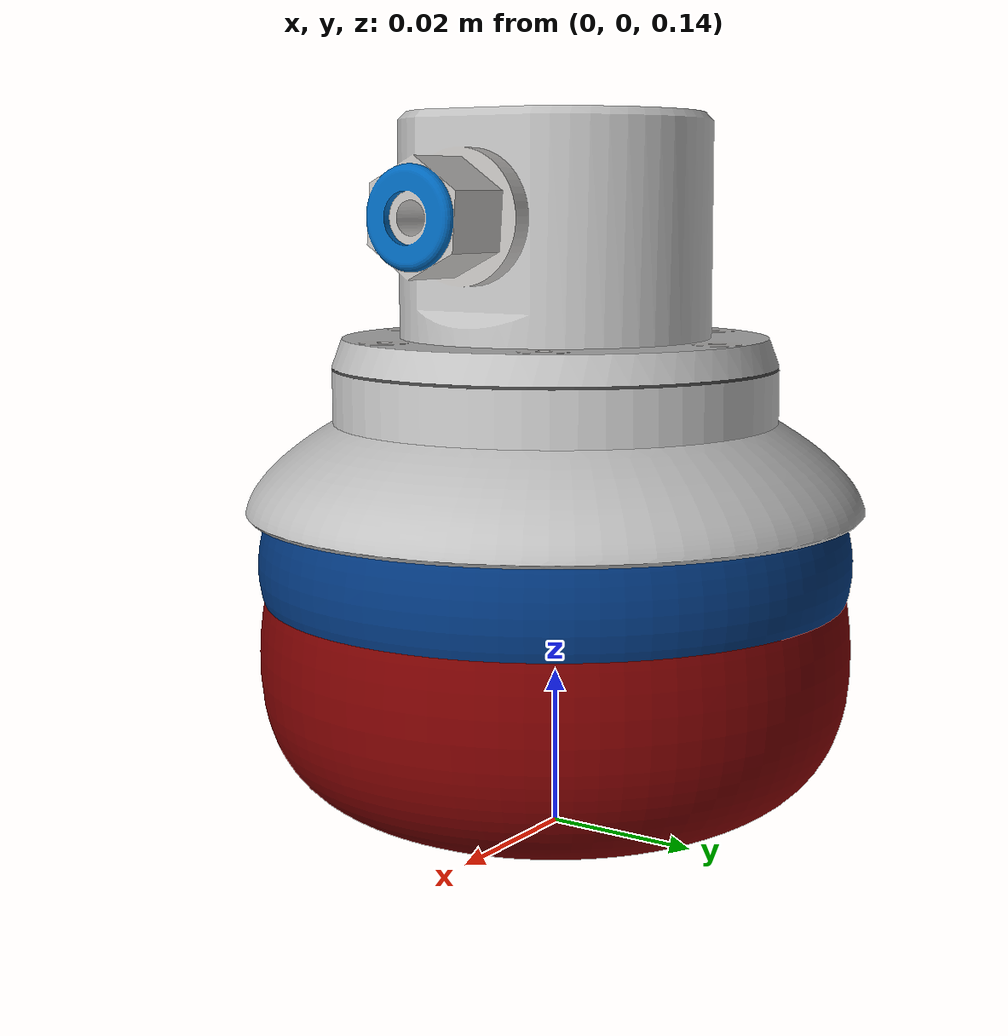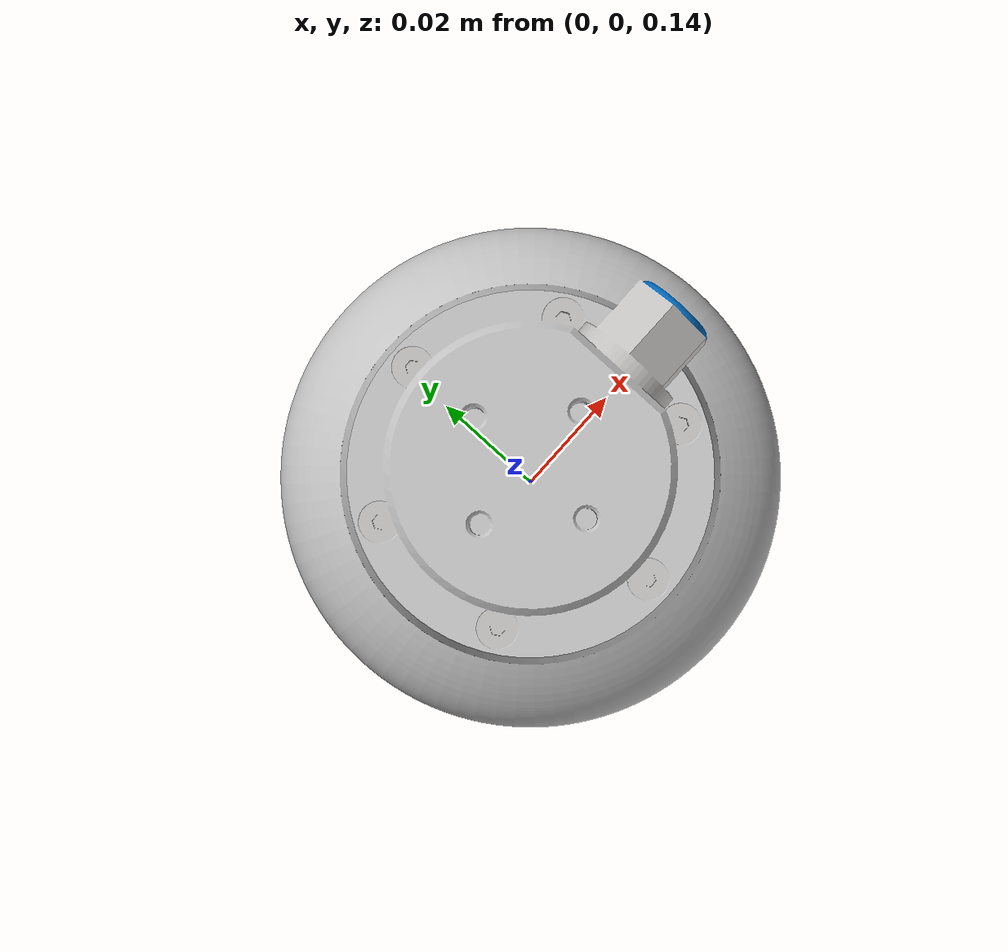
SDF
<?xml version="1.0" ?>
<sdf version="1.5">
  <model name="universal_gripper">
    <pose>0 0 0.2 0 0 0</pose>
    <static>false</static>
    <plugin filename="libgazebo_universal_gripper_plugin.so" name="universal_gripper_plugin"/>
    <link name="base_link">
      <pose>0 0 0 0 0 0</pose>
      <inertial>
        <inertia>
          <ixx>0.0002</ixx>
          <ixy>0</ixy>
          <ixz>0</ixz>
          <iyy>0.0002</iyy>
          <iyz>0</iyz>
          <izz>0.0002</izz>
        </inertia>
        <mass>0.1</mass>
      </inertial>
      <visual name="visual_open">
        <geometry>
          <mesh>
           <uri>model://universal_gripper/meshes/universal_gripper_open.dae</uri>
          </mesh>
        </geometry>
      </visual>
      <visual name="visual_closed">
        <geometry>
          <mesh>
           <uri>model://universal_gripper/meshes/universal_gripper_closed.dae</uri>
          </mesh>
        </geometry>
      </visual>
      <!-- disable physical collision -->
    </link>

    <link name="balloon">
      <pose frame="base_link">0 0 -0.000 0 0 0</pose>
      <inertial>
          <inertia>
            <ixx>0.0002</ixx>
            <ixy>0</ixy>
            <ixz>0</ixz>
            <iyy>0.0002</iyy>
            <iyz>0</iyz>
            <izz>0.0002</izz>
          </inertia>
          <mass>0.1</mass>
       </inertial>
    </link>

    <joint name="joint1" type="prismatic">
      <parent>base_link</parent>
      <child>balloon</child>
      <axis>
        <xyz>0 0 -1</xyz>
        <limit>
          <lower>0</lower>
          <upper>0.06</upper>
        </limit>
        <dynamics>
          <damping>0</damping>
          <friction>0</friction>
        </dynamics>
      </axis>
    </joint>

    <!-- the cylindrical contact surface that can move in z-direction -->
    <link name="balloon_contact">
      <gravity>0</gravity>
      <pose frame="balloon">0 0 -0.0 0 0 0</pose>
        <inertial>
          <inertia>
            <ixx>0.0002</ixx>
            <ixy>0</ixy>
            <ixz>0</ixz>
            <iyy>0.0002</iyy>
            <iyz>0</iyz>
            <izz>0.0002</izz>
          </inertia>
          <mass>0.01</mass>
        </inertial>
       <collision name="contact_sensor_collision">
        <geometry>
          <cylinder>
            <radius>0.040</radius>
              <length>0.002</length>
          </cylinder>
        </geometry>
        <surface>
          <bounce>
            <restitution_coefficient>0.000000</restitution_coefficient>
            <threshold>100000.000000</threshold>
          </bounce>
          <contact>
            <ode>
              <soft_cfm>0.000000</soft_cfm>
              <soft_erp>0.200000</soft_erp>
              <kp>1000000000.000000</kp>
              <kd>1.000000</kd>
              <max_vel>100.000000</max_vel>
              <min_depth>0.001000</min_depth>
            </ode>
          </contact>
          <friction>
            <ode>
              <mu>25</mu>
              <mu2>12.5</mu2>
            </ode>
          </friction>
        </surface>
        <!-- disable physical collision -->
      </collision>
      <sensor name="contact_sensor" type="contact">
        <contact>
          <collision>contact_sensor_collision</collision>
        </contact>
      </sensor>
    </link>

    <joint name="balloon_joint" type="fixed">
      <parent>balloon</parent>
      <child>balloon_contact</child>
    </joint>

  </model>
</sdf>
